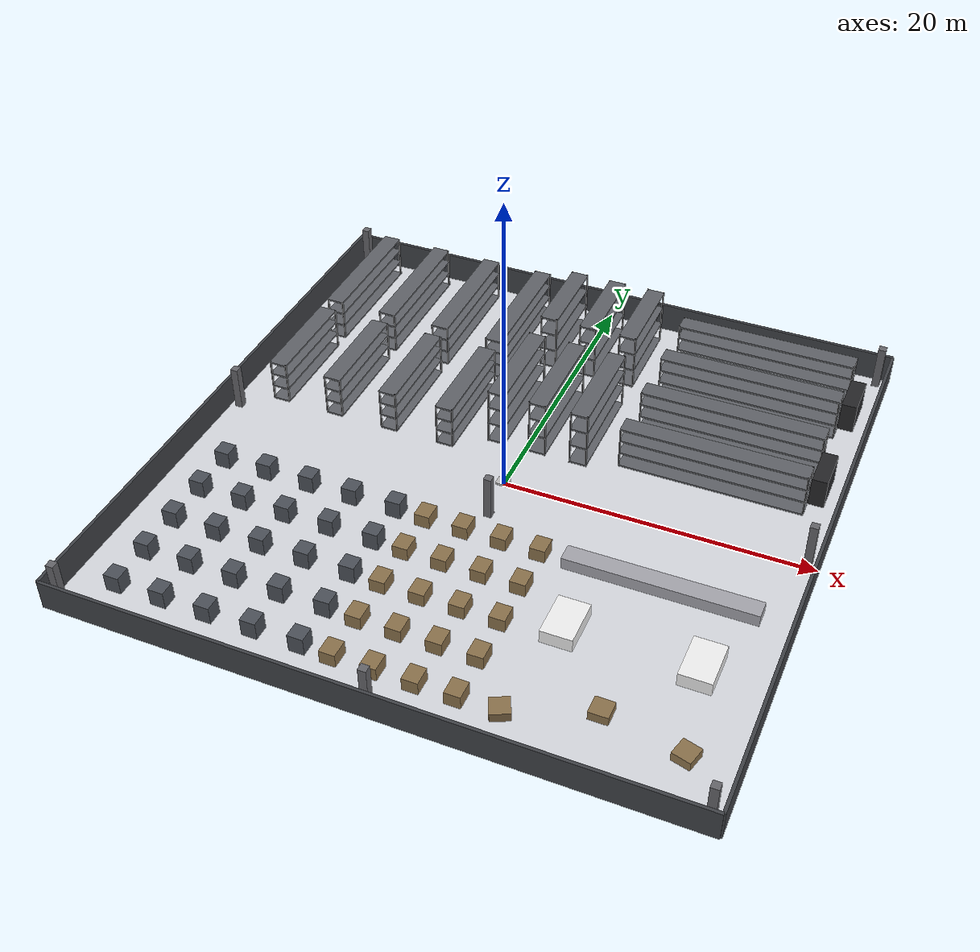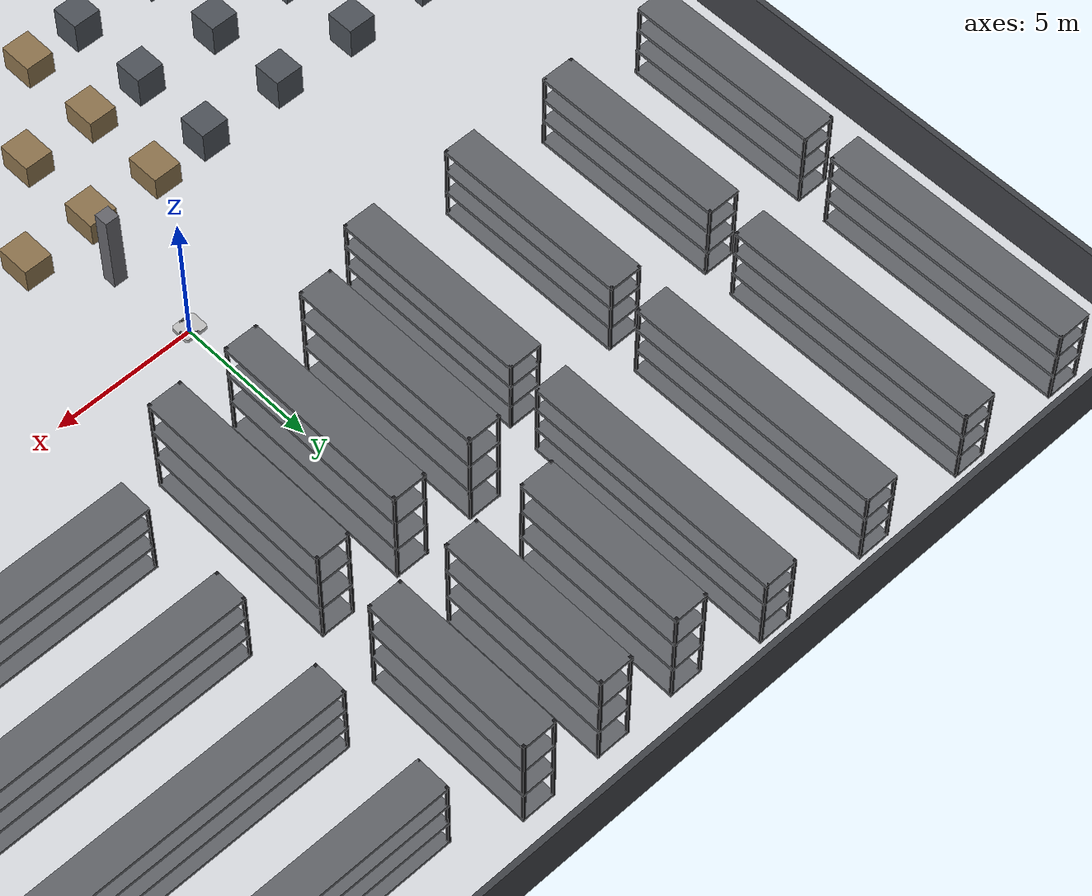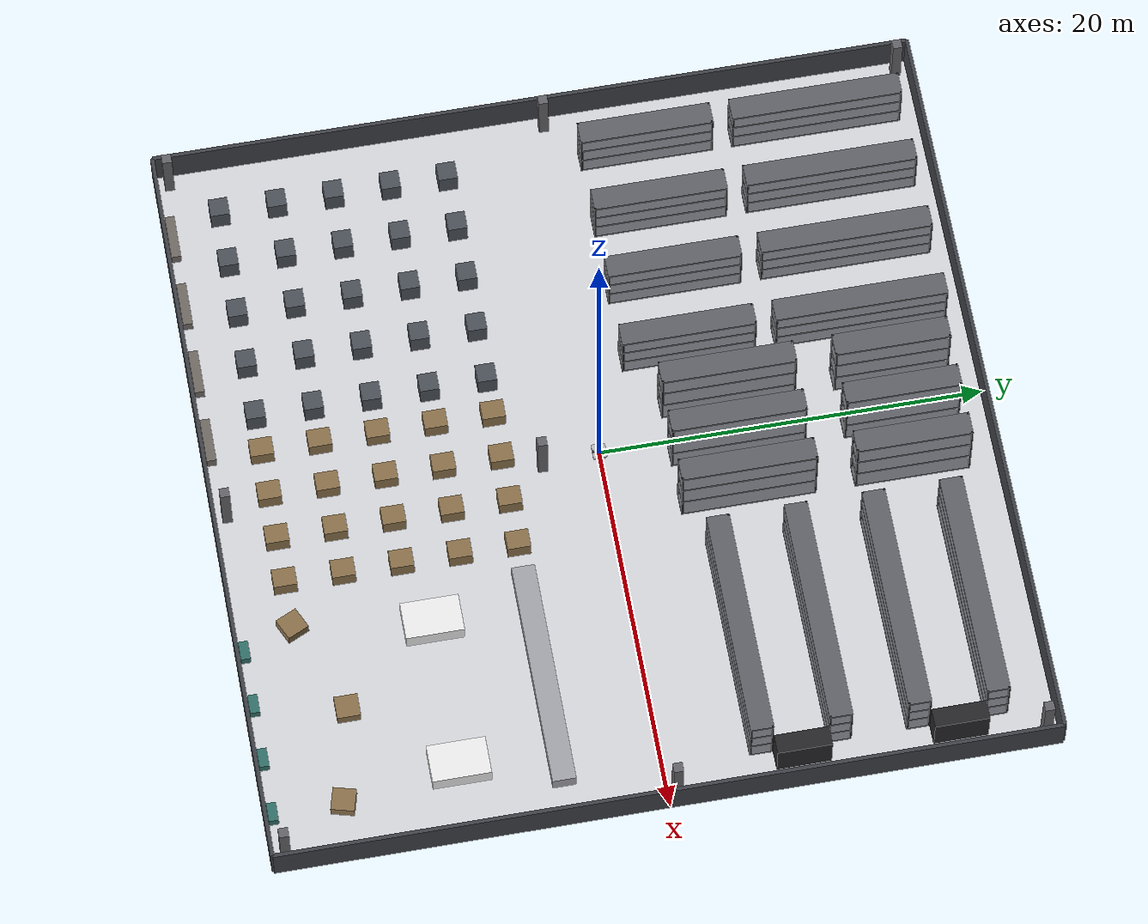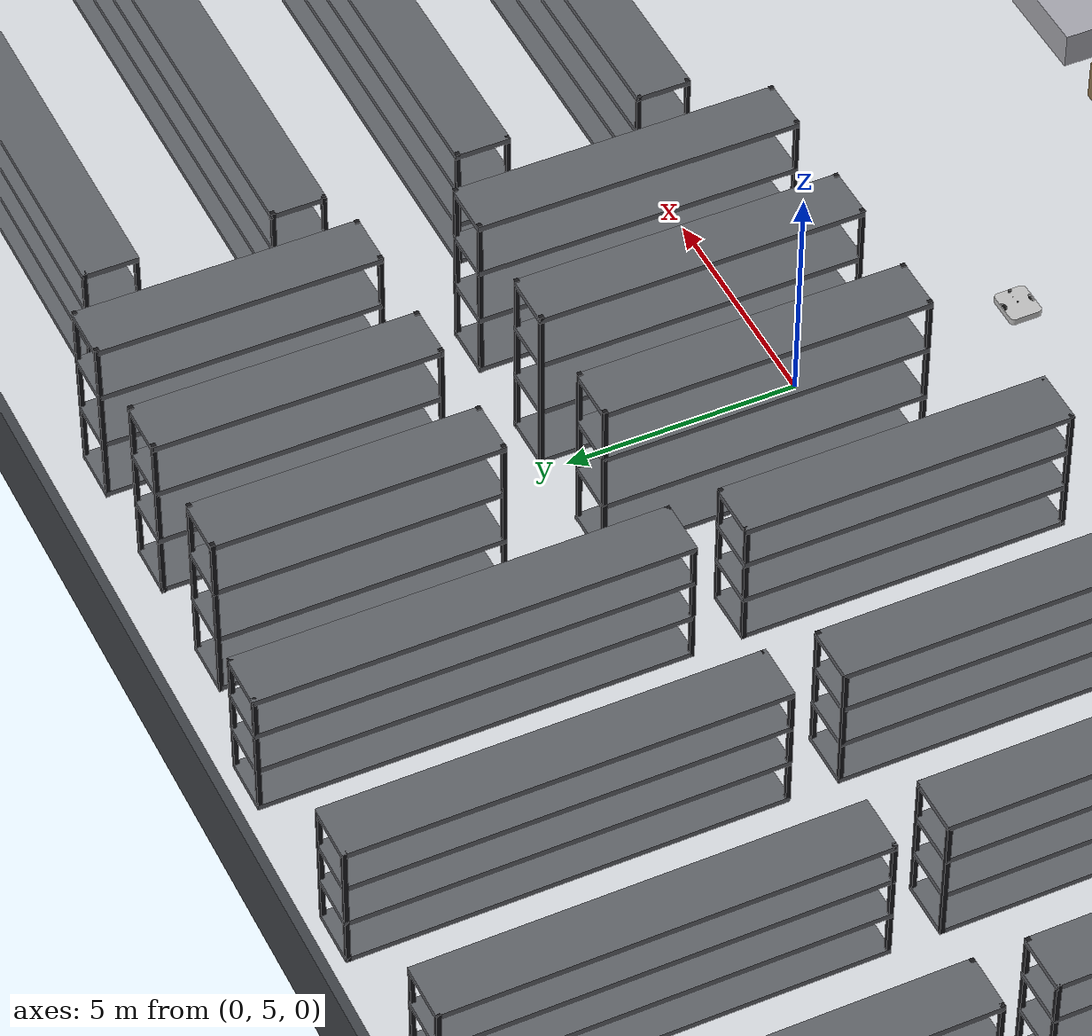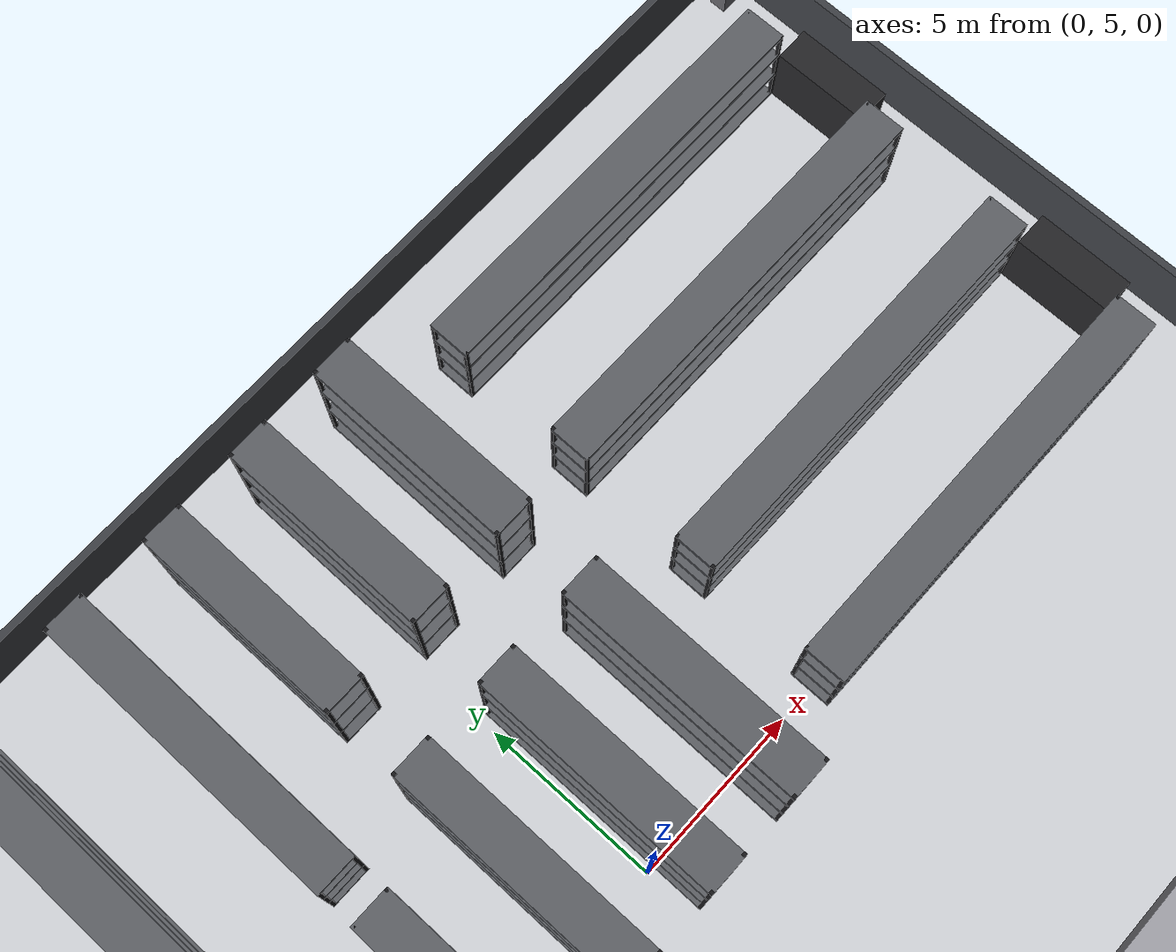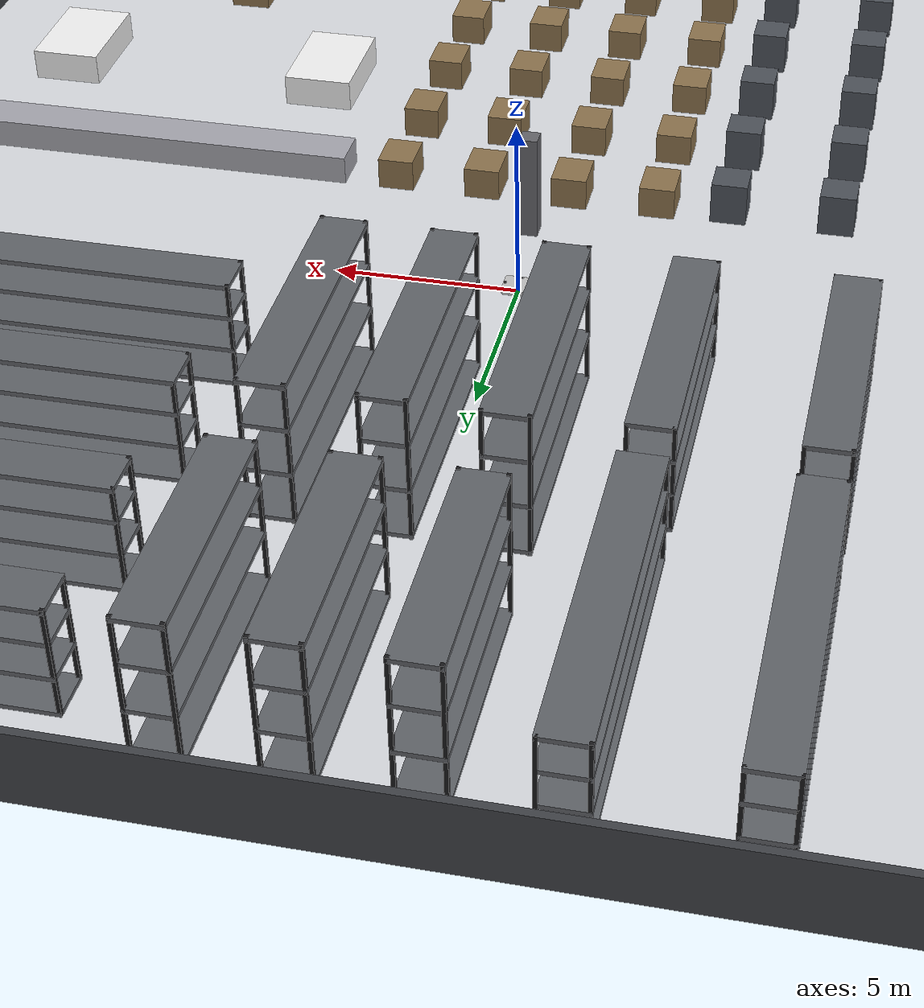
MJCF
<?xml version="1.0" encoding="utf-8"?>
<mujoco model="industrial_warehouse_40x40_v2_dense">

  <compiler angle="degree" meshdir="../meshes" autolimits="true"/>

  <option timestep="0.002" gravity="0 0 -9.81" integrator="implicitfast"/>

  <visual>
    <headlight ambient="0.4 0.4 0.4" diffuse="0.8 0.8 0.8" specular="0.1 0.1 0.1"/>
  </visual>

  <statistic center="0 0 0.2" extent="2.0"/>

  <default>
    <joint damping="0.1" armature="0.001"/>
    <default class="visual">
      <geom type="mesh" contype="0" conaffinity="0" density="0" group="2"/>
    </default>
    <default class="collision">
      <geom group="3" density="0" friction="1.0 0.005 0.0001" solref="0.005 1" solimp="0.9 0.95 0.001"/>
    </default>
  </default>

  <asset>
    <!-- Robot meshes (unchanged) -->
    <mesh name="base_link_mesh" file="base_link.STL"/>
    <mesh name="left_wheel_mesh" file="left_wheel.STL"/>
    <mesh name="right_wheel_mesh" file="right_wheel.STL"/>
    <mesh name="front_left_caster_mesh" file="front_left_caster.STL"/>
    <mesh name="front_right_caster_mesh" file="front_right_caster.STL"/>
    <mesh name="rear_left_caster_mesh" file="rear_left_caster.STL"/>
    <mesh name="rear_right_caster_mesh" file="rear_right_caster.STL"/>
    <mesh name="imu_mesh" file="imu.STL"/>
    <mesh name="lidar_mesh" file="lidar.STL"/>

    <!-- Professional industrial palette (kept from the original file) -->
    <material name="mat_floor"     rgba="0.85 0.86 0.88 1"/> <!-- Epoxy floor -->
    <material name="mat_wall"      rgba="0.25 0.26 0.28 1"/> <!-- Concrete wall -->
    <material name="mat_rack"      rgba="0.15 0.15 0.16 1"/> <!-- Steel rack frame -->
    <material name="mat_pod"       rgba="0.30 0.32 0.35 1"/> <!-- Kiva mobile pod -->
    <material name="mat_conveyor"  rgba="0.65 0.65 0.68 1"/> <!-- Aluminium conveyor -->
    <material name="mat_station"   rgba="0.95 0.95 0.95 1"/> <!-- Packing station -->
    <material name="mat_pallet"    rgba="0.55 0.45 0.30 1"/> <!-- Wood pallet / bulk load -->
    <!-- New materials, same muted industrial family -->
    <material name="mat_upright"   rgba="0.10 0.10 0.11 1"/> <!-- Rack upright post -->
    <material name="mat_beam"      rgba="0.38 0.39 0.41 1"/> <!-- Rack load beam -->
    <material name="mat_dock"      rgba="0.45 0.42 0.40 1"/> <!-- Dock leveler/bumper -->
    <material name="mat_charge"    rgba="0.20 0.45 0.42 1"/> <!-- AMR charging bay (teal, muted) -->
    <material name="mat_column"    rgba="0.40 0.40 0.42 1"/> <!-- Structural building column -->
  </asset>

  <worldbody>
    <light directional="true" pos="0 0 10" dir="0 0 -1" diffuse="0.9 0.9 0.9"/>

    <!-- Floor: 40 x 40 m (half-size 20) -->
    <geom name="ground_plane" type="plane" size="20 20 0.1" material="mat_floor" friction="1.0 0.005 0.0001"/>

    <body name="boundary_walls">
        <geom name="wall_north" type="box" pos="0 20 1.0" size="20 0.1 1.0" material="mat_wall"/>
        <geom name="wall_south" type="box" pos="0 -20 1.0" size="20 0.1 1.0" material="mat_wall"/>
        <geom name="wall_east" type="box" pos="20 0 1.0" size="0.1 20 1.0" material="mat_wall"/>
        <geom name="wall_west" type="box" pos="-20 0 1.0" size="0.1 20 1.0" material="mat_wall"/>
    </body>

    <body name="zone1_selective_pallet_racking">
        <geom name="rack_tl_1_col" class="collision" type="box" pos="-17 14.5 1.5" size="0.6 4.5 1.5" rgba="0.1 0.1 0.1 0.0"/>
        <geom class="visual" type="box" pos="-17.55 10.05 1.5" size="0.05 0.05 1.5" material="mat_upright"/>
        <geom class="visual" type="box" pos="-17.55 18.95 1.5" size="0.05 0.05 1.5" material="mat_upright"/>
        <geom class="visual" type="box" pos="-16.45 10.05 1.5" size="0.05 0.05 1.5" material="mat_upright"/>
        <geom class="visual" type="box" pos="-16.45 18.95 1.5" size="0.05 0.05 1.5" material="mat_upright"/>
        <geom class="visual" type="box" pos="-17 14.5 0.06" size="0.6 4.5 0.06" material="mat_beam"/>
        <geom class="visual" type="box" pos="-17 14.5 1.08" size="0.6 4.5 0.06" material="mat_beam"/>
        <geom class="visual" type="box" pos="-17 14.5 2.04" size="0.6 4.5 0.06" material="mat_beam"/>
        <geom class="visual" type="box" pos="-17 14.5 2.94" size="0.6 4.5 0.06" material="mat_beam"/>
        <geom name="rack_tl_2_col" class="collision" type="box" pos="-13 14.5 1.5" size="0.6 4.5 1.5" rgba="0.1 0.1 0.1 0.0"/>
        <geom class="visual" type="box" pos="-13.55 10.05 1.5" size="0.05 0.05 1.5" material="mat_upright"/>
        <geom class="visual" type="box" pos="-13.55 18.95 1.5" size="0.05 0.05 1.5" material="mat_upright"/>
        <geom class="visual" type="box" pos="-12.45 10.05 1.5" size="0.05 0.05 1.5" material="mat_upright"/>
        <geom class="visual" type="box" pos="-12.45 18.95 1.5" size="0.05 0.05 1.5" material="mat_upright"/>
        <geom class="visual" type="box" pos="-13 14.5 0.06" size="0.6 4.5 0.06" material="mat_beam"/>
        <geom class="visual" type="box" pos="-13 14.5 1.08" size="0.6 4.5 0.06" material="mat_beam"/>
        <geom class="visual" type="box" pos="-13 14.5 2.04" size="0.6 4.5 0.06" material="mat_beam"/>
        <geom class="visual" type="box" pos="-13 14.5 2.94" size="0.6 4.5 0.06" material="mat_beam"/>
        <geom name="rack_tl_3_col" class="collision" type="box" pos="-9 14.5 1.5" size="0.6 4.5 1.5" rgba="0.1 0.1 0.1 0.0"/>
        <geom class="visual" type="box" pos="-9.55 10.05 1.5" size="0.05 0.05 1.5" material="mat_upright"/>
        <geom class="visual" type="box" pos="-9.55 18.95 1.5" size="0.05 0.05 1.5" material="mat_upright"/>
        <geom class="visual" type="box" pos="-8.45 10.05 1.5" size="0.05 0.05 1.5" material="mat_upright"/>
        <geom class="visual" type="box" pos="-8.45 18.95 1.5" size="0.05 0.05 1.5" material="mat_upright"/>
        <geom class="visual" type="box" pos="-9 14.5 0.06" size="0.6 4.5 0.06" material="mat_beam"/>
        <geom class="visual" type="box" pos="-9 14.5 1.08" size="0.6 4.5 0.06" material="mat_beam"/>
        <geom class="visual" type="box" pos="-9 14.5 2.04" size="0.6 4.5 0.06" material="mat_beam"/>
        <geom class="visual" type="box" pos="-9 14.5 2.94" size="0.6 4.5 0.06" material="mat_beam"/>
        <geom name="rack_tl_4_col" class="collision" type="box" pos="-5 14.5 1.5" size="0.6 4.5 1.5" rgba="0.1 0.1 0.1 0.0"/>
        <geom class="visual" type="box" pos="-5.55 10.05 1.5" size="0.05 0.05 1.5" material="mat_upright"/>
        <geom class="visual" type="box" pos="-5.55 18.95 1.5" size="0.05 0.05 1.5" material="mat_upright"/>
        <geom class="visual" type="box" pos="-4.45 10.05 1.5" size="0.05 0.05 1.5" material="mat_upright"/>
        <geom class="visual" type="box" pos="-4.45 18.95 1.5" size="0.05 0.05 1.5" material="mat_upright"/>
        <geom class="visual" type="box" pos="-5 14.5 0.06" size="0.6 4.5 0.06" material="mat_beam"/>
        <geom class="visual" type="box" pos="-5 14.5 1.08" size="0.6 4.5 0.06" material="mat_beam"/>
        <geom class="visual" type="box" pos="-5 14.5 2.04" size="0.6 4.5 0.06" material="mat_beam"/>
        <geom class="visual" type="box" pos="-5 14.5 2.94" size="0.6 4.5 0.06" material="mat_beam"/>
        <geom name="rack_bl_1_col" class="collision" type="box" pos="-17 5.5 1.5" size="0.6 3.5 1.5" rgba="0.1 0.1 0.1 0.0"/>
        <geom class="visual" type="box" pos="-17.55 2.05 1.5" size="0.05 0.05 1.5" material="mat_upright"/>
        <geom class="visual" type="box" pos="-17.55 8.95 1.5" size="0.05 0.05 1.5" material="mat_upright"/>
        <geom class="visual" type="box" pos="-16.45 2.05 1.5" size="0.05 0.05 1.5" material="mat_upright"/>
        <geom class="visual" type="box" pos="-16.45 8.95 1.5" size="0.05 0.05 1.5" material="mat_upright"/>
        <geom class="visual" type="box" pos="-17 5.5 0.06" size="0.6 3.5 0.06" material="mat_beam"/>
        <geom class="visual" type="box" pos="-17 5.5 1.08" size="0.6 3.5 0.06" material="mat_beam"/>
        <geom class="visual" type="box" pos="-17 5.5 2.04" size="0.6 3.5 0.06" material="mat_beam"/>
        <geom class="visual" type="box" pos="-17 5.5 2.94" size="0.6 3.5 0.06" material="mat_beam"/>
        <geom name="rack_bl_2_col" class="collision" type="box" pos="-13 5.5 1.5" size="0.6 3.5 1.5" rgba="0.1 0.1 0.1 0.0"/>
        <geom class="visual" type="box" pos="-13.55 2.05 1.5" size="0.05 0.05 1.5" material="mat_upright"/>
        <geom class="visual" type="box" pos="-13.55 8.95 1.5" size="0.05 0.05 1.5" material="mat_upright"/>
        <geom class="visual" type="box" pos="-12.45 2.05 1.5" size="0.05 0.05 1.5" material="mat_upright"/>
        <geom class="visual" type="box" pos="-12.45 8.95 1.5" size="0.05 0.05 1.5" material="mat_upright"/>
        <geom class="visual" type="box" pos="-13 5.5 0.06" size="0.6 3.5 0.06" material="mat_beam"/>
        <geom class="visual" type="box" pos="-13 5.5 1.08" size="0.6 3.5 0.06" material="mat_beam"/>
        <geom class="visual" type="box" pos="-13 5.5 2.04" size="0.6 3.5 0.06" material="mat_beam"/>
        <geom class="visual" type="box" pos="-13 5.5 2.94" size="0.6 3.5 0.06" material="mat_beam"/>
        <geom name="rack_bl_3_col" class="collision" type="box" pos="-9 5.5 1.5" size="0.6 3.5 1.5" rgba="0.1 0.1 0.1 0.0"/>
        <geom class="visual" type="box" pos="-9.55 2.05 1.5" size="0.05 0.05 1.5" material="mat_upright"/>
        <geom class="visual" type="box" pos="-9.55 8.95 1.5" size="0.05 0.05 1.5" material="mat_upright"/>
        <geom class="visual" type="box" pos="-8.45 2.05 1.5" size="0.05 0.05 1.5" material="mat_upright"/>
        <geom class="visual" type="box" pos="-8.45 8.95 1.5" size="0.05 0.05 1.5" material="mat_upright"/>
        <geom class="visual" type="box" pos="-9 5.5 0.06" size="0.6 3.5 0.06" material="mat_beam"/>
        <geom class="visual" type="box" pos="-9 5.5 1.08" size="0.6 3.5 0.06" material="mat_beam"/>
        <geom class="visual" type="box" pos="-9 5.5 2.04" size="0.6 3.5 0.06" material="mat_beam"/>
        <geom class="visual" type="box" pos="-9 5.5 2.94" size="0.6 3.5 0.06" material="mat_beam"/>
        <geom name="rack_bl_4_col" class="collision" type="box" pos="-5 5.5 1.5" size="0.6 3.5 1.5" rgba="0.1 0.1 0.1 0.0"/>
        <geom class="visual" type="box" pos="-5.55 2.05 1.5" size="0.05 0.05 1.5" material="mat_upright"/>
        <geom class="visual" type="box" pos="-5.55 8.95 1.5" size="0.05 0.05 1.5" material="mat_upright"/>
        <geom class="visual" type="box" pos="-4.45 2.05 1.5" size="0.05 0.05 1.5" material="mat_upright"/>
        <geom class="visual" type="box" pos="-4.45 8.95 1.5" size="0.05 0.05 1.5" material="mat_upright"/>
        <geom class="visual" type="box" pos="-5 5.5 0.06" size="0.6 3.5 0.06" material="mat_beam"/>
        <geom class="visual" type="box" pos="-5 5.5 1.08" size="0.6 3.5 0.06" material="mat_beam"/>
        <geom class="visual" type="box" pos="-5 5.5 2.04" size="0.6 3.5 0.06" material="mat_beam"/>
        <geom class="visual" type="box" pos="-5 5.5 2.94" size="0.6 3.5 0.06" material="mat_beam"/>
    </body>

    <body name="zone2_dead_end_drivein_racking">
        <geom name="rack_tr_1_col" class="collision" type="box" pos="12 17 1.5" size="6.0 0.6 1.5" rgba="0.1 0.1 0.1 0.0"/>
        <geom class="visual" type="box" pos="6.05 16.45 1.5" size="0.05 0.05 1.5" material="mat_upright"/>
        <geom class="visual" type="box" pos="17.95 16.45 1.5" size="0.05 0.05 1.5" material="mat_upright"/>
        <geom class="visual" type="box" pos="6.05 17.55 1.5" size="0.05 0.05 1.5" material="mat_upright"/>
        <geom class="visual" type="box" pos="17.95 17.55 1.5" size="0.05 0.05 1.5" material="mat_upright"/>
        <geom class="visual" type="box" pos="12 17 0.06" size="6.0 0.6 0.06" material="mat_beam"/>
        <geom class="visual" type="box" pos="12 17 1.08" size="6.0 0.6 0.06" material="mat_beam"/>
        <geom class="visual" type="box" pos="12 17 2.04" size="6.0 0.6 0.06" material="mat_beam"/>
        <geom class="visual" type="box" pos="12 17 2.94" size="6.0 0.6 0.06" material="mat_beam"/>
        <geom name="rack_tr_2_col" class="collision" type="box" pos="12 13 1.5" size="6.0 0.6 1.5" rgba="0.1 0.1 0.1 0.0"/>
        <geom class="visual" type="box" pos="6.05 12.45 1.5" size="0.05 0.05 1.5" material="mat_upright"/>
        <geom class="visual" type="box" pos="17.95 12.45 1.5" size="0.05 0.05 1.5" material="mat_upright"/>
        <geom class="visual" type="box" pos="6.05 13.55 1.5" size="0.05 0.05 1.5" material="mat_upright"/>
        <geom class="visual" type="box" pos="17.95 13.55 1.5" size="0.05 0.05 1.5" material="mat_upright"/>
        <geom class="visual" type="box" pos="12 13 0.06" size="6.0 0.6 0.06" material="mat_beam"/>
        <geom class="visual" type="box" pos="12 13 1.08" size="6.0 0.6 0.06" material="mat_beam"/>
        <geom class="visual" type="box" pos="12 13 2.04" size="6.0 0.6 0.06" material="mat_beam"/>
        <geom class="visual" type="box" pos="12 13 2.94" size="6.0 0.6 0.06" material="mat_beam"/>
        <geom name="rack_tr_3_col" class="collision" type="box" pos="12 9 1.5" size="6.0 0.6 1.5" rgba="0.1 0.1 0.1 0.0"/>
        <geom class="visual" type="box" pos="6.05 8.45 1.5" size="0.05 0.05 1.5" material="mat_upright"/>
        <geom class="visual" type="box" pos="17.95 8.45 1.5" size="0.05 0.05 1.5" material="mat_upright"/>
        <geom class="visual" type="box" pos="6.05 9.55 1.5" size="0.05 0.05 1.5" material="mat_upright"/>
        <geom class="visual" type="box" pos="17.95 9.55 1.5" size="0.05 0.05 1.5" material="mat_upright"/>
        <geom class="visual" type="box" pos="12 9 0.06" size="6.0 0.6 0.06" material="mat_beam"/>
        <geom class="visual" type="box" pos="12 9 1.08" size="6.0 0.6 0.06" material="mat_beam"/>
        <geom class="visual" type="box" pos="12 9 2.04" size="6.0 0.6 0.06" material="mat_beam"/>
        <geom class="visual" type="box" pos="12 9 2.94" size="6.0 0.6 0.06" material="mat_beam"/>
        <geom name="rack_tr_4_col" class="collision" type="box" pos="12 5 1.5" size="6.0 0.6 1.5" rgba="0.1 0.1 0.1 0.0"/>
        <geom class="visual" type="box" pos="6.05 4.45 1.5" size="0.05 0.05 1.5" material="mat_upright"/>
        <geom class="visual" type="box" pos="17.95 4.45 1.5" size="0.05 0.05 1.5" material="mat_upright"/>
        <geom class="visual" type="box" pos="6.05 5.55 1.5" size="0.05 0.05 1.5" material="mat_upright"/>
        <geom class="visual" type="box" pos="17.95 5.55 1.5" size="0.05 0.05 1.5" material="mat_upright"/>
        <geom class="visual" type="box" pos="12 5 0.06" size="6.0 0.6 0.06" material="mat_beam"/>
        <geom class="visual" type="box" pos="12 5 1.08" size="6.0 0.6 0.06" material="mat_beam"/>
        <geom class="visual" type="box" pos="12 5 2.04" size="6.0 0.6 0.06" material="mat_beam"/>
        <geom class="visual" type="box" pos="12 5 2.94" size="6.0 0.6 0.06" material="mat_beam"/>
    </body>
    <body name="zone2_deadend_stops">
        <geom name="deadend_block_1" type="box" pos="18.5 15 1.0" size="0.5 1.4 1.0" material="mat_rack"/>
        <geom name="deadend_block_2" type="box" pos="18.5 7 1.0" size="0.5 1.4 1.0" material="mat_rack"/>
    </body>

    <body name="zone3_kiva_pod_grid">
        <geom name="pod_1_1" type="box" pos="-17 -5 0.6" size="0.5 0.5 0.6" material="mat_pod"/>
        <geom name="pod_1_2" type="box" pos="-14 -5 0.6" size="0.5 0.5 0.6" material="mat_pod"/>
        <geom name="pod_1_3" type="box" pos="-11 -5 0.6" size="0.5 0.5 0.6" material="mat_pod"/>
        <geom name="pod_1_4" type="box" pos="-8 -5 0.6" size="0.5 0.5 0.6" material="mat_pod"/>
        <geom name="pod_1_5" type="box" pos="-5 -5 0.6" size="0.5 0.5 0.6" material="mat_pod"/>
        <geom name="pod_2_1" type="box" pos="-17 -8 0.6" size="0.5 0.5 0.6" material="mat_pod"/>
        <geom name="pod_2_2" type="box" pos="-14 -8 0.6" size="0.5 0.5 0.6" material="mat_pod"/>
        <geom name="pod_2_3" type="box" pos="-11 -8 0.6" size="0.5 0.5 0.6" material="mat_pod"/>
        <geom name="pod_2_4" type="box" pos="-8 -8 0.6" size="0.5 0.5 0.6" material="mat_pod"/>
        <geom name="pod_2_5" type="box" pos="-5 -8 0.6" size="0.5 0.5 0.6" material="mat_pod"/>
        <geom name="pod_3_1" type="box" pos="-17 -11 0.6" size="0.5 0.5 0.6" material="mat_pod"/>
        <geom name="pod_3_2" type="box" pos="-14 -11 0.6" size="0.5 0.5 0.6" material="mat_pod"/>
        <geom name="pod_3_3" type="box" pos="-11 -11 0.6" size="0.5 0.5 0.6" material="mat_pod"/>
        <geom name="pod_3_4" type="box" pos="-8 -11 0.6" size="0.5 0.5 0.6" material="mat_pod"/>
        <geom name="pod_3_5" type="box" pos="-5 -11 0.6" size="0.5 0.5 0.6" material="mat_pod"/>
        <geom name="pod_4_1" type="box" pos="-17 -14 0.6" size="0.5 0.5 0.6" material="mat_pod"/>
        <geom name="pod_4_2" type="box" pos="-14 -14 0.6" size="0.5 0.5 0.6" material="mat_pod"/>
        <geom name="pod_4_3" type="box" pos="-11 -14 0.6" size="0.5 0.5 0.6" material="mat_pod"/>
        <geom name="pod_4_4" type="box" pos="-8 -14 0.6" size="0.5 0.5 0.6" material="mat_pod"/>
        <geom name="pod_4_5" type="box" pos="-5 -14 0.6" size="0.5 0.5 0.6" material="mat_pod"/>
        <geom name="pod_5_1" type="box" pos="-17 -17 0.6" size="0.5 0.5 0.6" material="mat_pod"/>
        <geom name="pod_5_2" type="box" pos="-14 -17 0.6" size="0.5 0.5 0.6" material="mat_pod"/>
        <geom name="pod_5_3" type="box" pos="-11 -17 0.6" size="0.5 0.5 0.6" material="mat_pod"/>
        <geom name="pod_5_4" type="box" pos="-8 -17 0.6" size="0.5 0.5 0.6" material="mat_pod"/>
        <geom name="pod_5_5" type="box" pos="-5 -17 0.6" size="0.5 0.5 0.6" material="mat_pod"/>
    </body>

    <body name="zone4_staging_and_packing">
        <geom name="conveyor_main" type="box" pos="12 -5 0.4" size="6.0 0.6 0.4" material="mat_conveyor"/>
        <geom name="pack_station_1" type="box" pos="8 -10 0.45" size="1.0 1.5 0.45" material="mat_station"/>
        <geom name="pack_station_2" type="box" pos="16 -10 0.45" size="1.0 1.5 0.45" material="mat_station"/>
        <geom name="temp_pallet_1" type="box" pos="12 -15 0.3" size="0.6 0.6 0.3" material="mat_pallet"/>
        <geom name="temp_pallet_2" type="box" pos="7 -17 0.3" euler="0 0 25" size="0.6 0.6 0.3" material="mat_pallet"/>
        <geom name="temp_pallet_3" type="box" pos="17 -16 0.3" euler="0 0 -15" size="0.6 0.6 0.3" material="mat_pallet"/>
    </body>

    <body name="zone5_vna_high_bay_racking">
        <geom name="vna_rack_1_a_col" class="collision" type="box" pos="-2.0 7.0 2.0" size="0.6 3.5 2.0" rgba="0.1 0.1 0.1 0.0"/>
        <geom class="visual" type="box" pos="-2.55 3.55 2.0" size="0.05 0.05 2.0" material="mat_upright"/>
        <geom class="visual" type="box" pos="-2.55 10.45 2.0" size="0.05 0.05 2.0" material="mat_upright"/>
        <geom class="visual" type="box" pos="-1.4500000000000002 3.55 2.0" size="0.05 0.05 2.0" material="mat_upright"/>
        <geom class="visual" type="box" pos="-1.4500000000000002 10.45 2.0" size="0.05 0.05 2.0" material="mat_upright"/>
        <geom class="visual" type="box" pos="-2.0 7.0 0.08" size="0.6 3.5 0.06" material="mat_beam"/>
        <geom class="visual" type="box" pos="-2.0 7.0 1.44" size="0.6 3.5 0.06" material="mat_beam"/>
        <geom class="visual" type="box" pos="-2.0 7.0 2.72" size="0.6 3.5 0.06" material="mat_beam"/>
        <geom class="visual" type="box" pos="-2.0 7.0 3.92" size="0.6 3.5 0.06" material="mat_beam"/>
        <geom name="vna_rack_1_b_col" class="collision" type="box" pos="-2.0 15.5 2.0" size="0.6 3.0 2.0" rgba="0.1 0.1 0.1 0.0"/>
        <geom class="visual" type="box" pos="-2.55 12.55 2.0" size="0.05 0.05 2.0" material="mat_upright"/>
        <geom class="visual" type="box" pos="-2.55 18.45 2.0" size="0.05 0.05 2.0" material="mat_upright"/>
        <geom class="visual" type="box" pos="-1.4500000000000002 12.55 2.0" size="0.05 0.05 2.0" material="mat_upright"/>
        <geom class="visual" type="box" pos="-1.4500000000000002 18.45 2.0" size="0.05 0.05 2.0" material="mat_upright"/>
        <geom class="visual" type="box" pos="-2.0 15.5 0.08" size="0.6 3.0 0.06" material="mat_beam"/>
        <geom class="visual" type="box" pos="-2.0 15.5 1.44" size="0.6 3.0 0.06" material="mat_beam"/>
        <geom class="visual" type="box" pos="-2.0 15.5 2.72" size="0.6 3.0 0.06" material="mat_beam"/>
        <geom class="visual" type="box" pos="-2.0 15.5 3.92" size="0.6 3.0 0.06" material="mat_beam"/>
        <geom name="vna_rack_2_a_col" class="collision" type="box" pos="0.8 7.0 2.0" size="0.6 3.5 2.0" rgba="0.1 0.1 0.1 0.0"/>
        <geom class="visual" type="box" pos="0.2500000000000001 3.55 2.0" size="0.05 0.05 2.0" material="mat_upright"/>
        <geom class="visual" type="box" pos="0.2500000000000001 10.45 2.0" size="0.05 0.05 2.0" material="mat_upright"/>
        <geom class="visual" type="box" pos="1.35 3.55 2.0" size="0.05 0.05 2.0" material="mat_upright"/>
        <geom class="visual" type="box" pos="1.35 10.45 2.0" size="0.05 0.05 2.0" material="mat_upright"/>
        <geom class="visual" type="box" pos="0.8 7.0 0.08" size="0.6 3.5 0.06" material="mat_beam"/>
        <geom class="visual" type="box" pos="0.8 7.0 1.44" size="0.6 3.5 0.06" material="mat_beam"/>
        <geom class="visual" type="box" pos="0.8 7.0 2.72" size="0.6 3.5 0.06" material="mat_beam"/>
        <geom class="visual" type="box" pos="0.8 7.0 3.92" size="0.6 3.5 0.06" material="mat_beam"/>
        <geom name="vna_rack_2_b_col" class="collision" type="box" pos="0.8 15.5 2.0" size="0.6 3.0 2.0" rgba="0.1 0.1 0.1 0.0"/>
        <geom class="visual" type="box" pos="0.2500000000000001 12.55 2.0" size="0.05 0.05 2.0" material="mat_upright"/>
        <geom class="visual" type="box" pos="0.2500000000000001 18.45 2.0" size="0.05 0.05 2.0" material="mat_upright"/>
        <geom class="visual" type="box" pos="1.35 12.55 2.0" size="0.05 0.05 2.0" material="mat_upright"/>
        <geom class="visual" type="box" pos="1.35 18.45 2.0" size="0.05 0.05 2.0" material="mat_upright"/>
        <geom class="visual" type="box" pos="0.8 15.5 0.08" size="0.6 3.0 0.06" material="mat_beam"/>
        <geom class="visual" type="box" pos="0.8 15.5 1.44" size="0.6 3.0 0.06" material="mat_beam"/>
        <geom class="visual" type="box" pos="0.8 15.5 2.72" size="0.6 3.0 0.06" material="mat_beam"/>
        <geom class="visual" type="box" pos="0.8 15.5 3.92" size="0.6 3.0 0.06" material="mat_beam"/>
        <geom name="vna_rack_3_a_col" class="collision" type="box" pos="3.6 7.0 2.0" size="0.6 3.5 2.0" rgba="0.1 0.1 0.1 0.0"/>
        <geom class="visual" type="box" pos="3.0500000000000003 3.55 2.0" size="0.05 0.05 2.0" material="mat_upright"/>
        <geom class="visual" type="box" pos="3.0500000000000003 10.45 2.0" size="0.05 0.05 2.0" material="mat_upright"/>
        <geom class="visual" type="box" pos="4.15 3.55 2.0" size="0.05 0.05 2.0" material="mat_upright"/>
        <geom class="visual" type="box" pos="4.15 10.45 2.0" size="0.05 0.05 2.0" material="mat_upright"/>
        <geom class="visual" type="box" pos="3.6 7.0 0.08" size="0.6 3.5 0.06" material="mat_beam"/>
        <geom class="visual" type="box" pos="3.6 7.0 1.44" size="0.6 3.5 0.06" material="mat_beam"/>
        <geom class="visual" type="box" pos="3.6 7.0 2.72" size="0.6 3.5 0.06" material="mat_beam"/>
        <geom class="visual" type="box" pos="3.6 7.0 3.92" size="0.6 3.5 0.06" material="mat_beam"/>
        <geom name="vna_rack_3_b_col" class="collision" type="box" pos="3.6 15.5 2.0" size="0.6 3.0 2.0" rgba="0.1 0.1 0.1 0.0"/>
        <geom class="visual" type="box" pos="3.0500000000000003 12.55 2.0" size="0.05 0.05 2.0" material="mat_upright"/>
        <geom class="visual" type="box" pos="3.0500000000000003 18.45 2.0" size="0.05 0.05 2.0" material="mat_upright"/>
        <geom class="visual" type="box" pos="4.15 12.55 2.0" size="0.05 0.05 2.0" material="mat_upright"/>
        <geom class="visual" type="box" pos="4.15 18.45 2.0" size="0.05 0.05 2.0" material="mat_upright"/>
        <geom class="visual" type="box" pos="3.6 15.5 0.08" size="0.6 3.0 0.06" material="mat_beam"/>
        <geom class="visual" type="box" pos="3.6 15.5 1.44" size="0.6 3.0 0.06" material="mat_beam"/>
        <geom class="visual" type="box" pos="3.6 15.5 2.72" size="0.6 3.0 0.06" material="mat_beam"/>
        <geom class="visual" type="box" pos="3.6 15.5 3.92" size="0.6 3.0 0.06" material="mat_beam"/>
    </body>

    <body name="zone6_bulk_floor_stacking">
        <geom name="bulk_1_1" type="box" pos="-3.0 -5 0.45" size="0.5 0.6 0.45" material="mat_pallet"/>
        <geom name="bulk_1_2" type="box" pos="-0.5 -5 0.45" size="0.5 0.6 0.45" material="mat_pallet"/>
        <geom name="bulk_1_3" type="box" pos="2.0 -5 0.45" size="0.5 0.6 0.45" material="mat_pallet"/>
        <geom name="bulk_1_4" type="box" pos="4.5 -5 0.45" size="0.5 0.6 0.45" material="mat_pallet"/>
        <geom name="bulk_2_1" type="box" pos="-3.0 -8 0.45" size="0.5 0.6 0.45" material="mat_pallet"/>
        <geom name="bulk_2_2" type="box" pos="-0.5 -8 0.45" size="0.5 0.6 0.45" material="mat_pallet"/>
        <geom name="bulk_2_3" type="box" pos="2.0 -8 0.45" size="0.5 0.6 0.45" material="mat_pallet"/>
        <geom name="bulk_2_4" type="box" pos="4.5 -8 0.45" size="0.5 0.6 0.45" material="mat_pallet"/>
        <geom name="bulk_3_1" type="box" pos="-3.0 -11 0.45" size="0.5 0.6 0.45" material="mat_pallet"/>
        <geom name="bulk_3_2" type="box" pos="-0.5 -11 0.45" size="0.5 0.6 0.45" material="mat_pallet"/>
        <geom name="bulk_3_3" type="box" pos="2.0 -11 0.45" size="0.5 0.6 0.45" material="mat_pallet"/>
        <geom name="bulk_3_4" type="box" pos="4.5 -11 0.45" size="0.5 0.6 0.45" material="mat_pallet"/>
        <geom name="bulk_4_1" type="box" pos="-3.0 -14 0.45" size="0.5 0.6 0.45" material="mat_pallet"/>
        <geom name="bulk_4_2" type="box" pos="-0.5 -14 0.45" size="0.5 0.6 0.45" material="mat_pallet"/>
        <geom name="bulk_4_3" type="box" pos="2.0 -14 0.45" size="0.5 0.6 0.45" material="mat_pallet"/>
        <geom name="bulk_4_4" type="box" pos="4.5 -14 0.45" size="0.5 0.6 0.45" material="mat_pallet"/>
        <geom name="bulk_5_1" type="box" pos="-3.0 -17 0.45" size="0.5 0.6 0.45" material="mat_pallet"/>
        <geom name="bulk_5_2" type="box" pos="-0.5 -17 0.45" size="0.5 0.6 0.45" material="mat_pallet"/>
        <geom name="bulk_5_3" type="box" pos="2.0 -17 0.45" size="0.5 0.6 0.45" material="mat_pallet"/>
        <geom name="bulk_5_4" type="box" pos="4.5 -17 0.45" size="0.5 0.6 0.45" material="mat_pallet"/>
    </body>

    <body name="zone7_cross_dock_bays">
        <geom name="dock_bumper_1" type="box" pos="-16 -19.6 0.3" size="1.2 0.25 0.3" material="mat_dock"/>
        <geom name="dock_bumper_2" type="box" pos="-12 -19.6 0.3" size="1.2 0.25 0.3" material="mat_dock"/>
        <geom name="dock_bumper_3" type="box" pos="-8 -19.6 0.3" size="1.2 0.25 0.3" material="mat_dock"/>
        <geom name="dock_bumper_4" type="box" pos="-4 -19.6 0.3" size="1.2 0.25 0.3" material="mat_dock"/>
    </body>

    <body name="zone8_amr_charging_bay">
        <geom name="charge_dock_1" type="box" pos="8 -19.6 0.25" size="0.5 0.25 0.25" material="mat_charge"/>
        <geom name="charge_dock_2" type="box" pos="11 -19.6 0.25" size="0.5 0.25 0.25" material="mat_charge"/>
        <geom name="charge_dock_3" type="box" pos="14 -19.6 0.25" size="0.5 0.25 0.25" material="mat_charge"/>
        <geom name="charge_dock_4" type="box" pos="17 -19.6 0.25" size="0.5 0.25 0.25" material="mat_charge"/>
    </body>

    <body name="zone9_structural_columns">
        <geom name="column_1" type="box" pos="-19.3 19.3 1.5" size="0.25 0.25 1.5" material="mat_column"/>
        <geom name="column_2" type="box" pos="19.3 19.3 1.5" size="0.25 0.25 1.5" material="mat_column"/>
        <geom name="column_3" type="box" pos="-19.3 -19.3 1.5" size="0.25 0.25 1.5" material="mat_column"/>
        <geom name="column_4" type="box" pos="19.3 -19.3 1.5" size="0.25 0.25 1.5" material="mat_column"/>
        <geom name="column_5" type="box" pos="0.3 -3.0 1.5" size="0.25 0.25 1.5" material="mat_column"/>
        <geom name="column_6" type="box" pos="0.3 -19.3 1.5" size="0.25 0.25 1.5" material="mat_column"/>
        <geom name="column_7" type="box" pos="-19.3 0.5 1.5" size="0.25 0.25 1.5" material="mat_column"/>
        <geom name="column_8" type="box" pos="19.3 0.5 1.5" size="0.25 0.25 1.5" material="mat_column"/>
    </body>

    <!-- ORIGINAL ROBOT STRUCTURE (unchanged)        -->
    <body name="base_link" pos="0 0 0.15">
      <freejoint name="base_freejoint"/>
      <inertial pos="-0.01641684226393 -2.127036027730e-08 0.01536357867772" mass="77.76660059782901" fullinertia="3.2338238997685766 4.5790630022931795 7.535284316709289 6.94917763249993e-07 -0.010447117841865663 -5.34948547228727e-08"/>

      <geom name="base_visual" class="visual" mesh="base_link_mesh" rgba="0.75 0.75 0.75 1"/>
      <geom name="base_collision_rear" class="collision" type="box" pos="-0.322 0 0.015" size="0.100 0.357 0.0725" rgba="0.2 0.5 0.8 0.15"/>
      <geom name="base_collision_center" class="collision" type="box" pos="-0.012 0 0.015" size="0.210 0.250 0.0725" rgba="0.2 0.5 0.8 0.15"/>
      <geom name="base_collision_front" class="collision" type="box" pos="0.298 0 0.015" size="0.100 0.357 0.0725" rgba="0.2 0.5 0.8 0.15"/>

      <site name="base_foot_link" type="sphere" pos="0 0 -0.1" size="0.005" rgba="0 1 0 0"/>

      <body name="left_wheel" pos="0 0.297 0" euler="-90 0 0">
        <joint name="left_wheel_jt" type="hinge" axis="0 0 1" limited="false" damping="0.2"/>
        <inertial pos="-2.2767068983e-06 -4.0883539315e-07 -0.0141278415" mass="0.936684355982048" fullinertia="0.0029343491062 0.0029343328072 0.0056452287041 3.0243843436e-09 1.7611681221e-08 3.1625847890e-09"/>
        <geom name="left_wheel_visual" class="visual" mesh="left_wheel_mesh" rgba="0.15 0.15 0.15 1"/>
        <geom name="left_wheel_collision" class="collision" type="cylinder" size="0.1 0.028" friction="1.2 0.01 0.0001" rgba="1 0 0 0.2"/>
      </body>

      <body name="right_wheel" pos="0 -0.297 0" euler="-90 0 0">
        <joint name="right_wheel_jt" type="hinge" axis="0 0 1" limited="false" damping="0.2"/>
        <inertial pos="2.0712286184e-06 -1.0298315041e-06 0.0141278415" mass="0.936684355982047" fullinertia="0.0029343462033 0.0029343357101 0.0056452287041 -6.9306759880e-09 1.6022183872e-08 -7.9663594389e-09"/>
        <geom name="right_wheel_visual" class="visual" mesh="right_wheel_mesh" rgba="0.15 0.15 0.15 1"/>
        <geom name="right_wheel_collision" class="collision" type="cylinder" size="0.1 0.028" friction="1.2 0.01 0.0001" rgba="1 0 0 0.2"/>
      </body>

      <body name="front_left_caster" pos="0.323 0.167 -0.078807">
        <joint name="front_left_caster_jt" type="ball" damping="0.001"/>
        <inertial pos="0 0 -2.7371825402e-05" mass="0.0399091557703669" fullinertia="7.2111462855e-06 7.2111444698e-06 7.2594199749e-06 8.8035157662e-13 -8.7566291737e-14 2.1607959245e-13"/>
        <geom name="caster_front_left_visual" class="visual" mesh="front_left_caster_mesh" rgba="0.2 0.2 0.2 1"/>
        <geom name="caster_front_left_collision" class="collision" type="sphere" size="0.0212" friction="0.35 0.002 0.0001" rgba="0.1 0.8 0.2 0.25"/>
      </body>

      <body name="front_right_caster" pos="0.323 -0.167 -0.078807">
        <joint name="front_right_caster_jt" type="ball" damping="0.001"/>
        <inertial pos="0 0 -2.7371825402e-05" mass="0.0399091557703669" fullinertia="7.2111462855e-06 7.2111444698e-06 7.2594199749e-06 8.8035157716e-13 -8.7566300715e-14 2.1607958912e-13"/>
        <geom name="caster_front_right_visual" class="visual" mesh="front_right_caster_mesh" rgba="0.2 0.2 0.2 1"/>
        <geom name="caster_front_right_collision" class="collision" type="sphere" size="0.0212" friction="0.35 0.002 0.0001" rgba="0.1 0.8 0.2 0.25"/>
      </body>

      <body name="rear_left_caster" pos="-0.347 0.167 -0.078807">
        <joint name="rear_left_caster_jt" type="ball" damping="0.001"/>
        <inertial pos="0 0 -2.7371825402e-05" mass="0.0399091557703668" fullinertia="7.2111462855e-06 7.2111444698e-06 7.2594199749e-06 8.8035157366e-13 -8.7566301701e-14 2.1607958824e-13"/>
        <geom name="caster_rear_left_visual" class="visual" mesh="rear_left_caster_mesh" rgba="0.2 0.2 0.2 1"/>
        <geom name="caster_rear_left_collision" class="collision" type="sphere" size="0.0212" friction="0.35 0.002 0.0001" rgba="0.1 0.8 0.2 0.25"/>
      </body>

      <body name="rear_right_caster" pos="-0.347 -0.167 -0.078807">
        <joint name="rear_right_caster_jt" type="ball" damping="0.001"/>
        <inertial pos="0 0 -2.7371825402e-05" mass="0.0399091557703668" fullinertia="7.2111459706e-06 7.2111447847e-06 7.2594199749e-06 -1.1169235652e-12 -1.2014432927e-13 -1.9980887354e-13"/>
        <geom name="caster_rear_right_visual" class="visual" mesh="rear_right_caster_mesh" rgba="0.2 0.2 0.2 1"/>
        <geom name="caster_rear_right_collision" class="collision" type="sphere" size="0.0212" friction="0.35 0.002 0.0001" rgba="0.1 0.8 0.2 0.25"/>
      </body>

      <body name="imu" pos="0 0 0.1091">
        <inertial pos="0.0023989165 0 -0.0108251693" mass="0.0350113154456988" fullinertia="4.9486481208e-06 8.8682844667e-06 1.1262903048e-05 2.0030538049e-12 -1.7595997497e-08 6.5460652693e-23"/>
        <geom name="imu_visual" class="visual" mesh="imu_mesh" rgba="0.25 0.25 0.25 1"/>
        <site name="imu_site" type="sphere" pos="0 0 0" size="0.005" rgba="1 0.5 0 0"/>
      </body>

      <body name="lidar" pos="0.33152 0 0.11235">
        <inertial pos="0.0038697684 -1.4554375616e-05 -0.0055496380" mass="0.165382751635991" fullinertia="7.8865183611e-05 7.5190291494e-05 1.0994675306e-04 4.8471764092e-08 2.1847944396e-06 2.8860157251e-08"/>
        <geom name="lidar_visual" class="visual" mesh="lidar_mesh" rgba="0.3 0.3 0.3 1"/>
        <site name="lidar_origin" type="sphere" pos="0 0 0" size="0.005" rgba="1 0 0 0"/>
      </body>
    </body>

  </worldbody>

  <sensor>
    <gyro name="imu_gyro" site="imu_site"/>
    <accelerometer name="imu_accelerometer" site="imu_site"/>
    <framequat name="imu_orientation" objtype="site" objname="imu_site"/>
  </sensor>

  <actuator>
    <velocity name="left_wheel_motor" joint="left_wheel_jt" kv="100" ctrlrange="-8.3775804096 8.3775804096" forcerange="-19.1 19.1"/>
    <velocity name="right_wheel_motor" joint="right_wheel_jt" kv="100" ctrlrange="-8.3775804096 8.3775804096" forcerange="-19.1 19.1"/>
  </actuator>
</mujoco>
